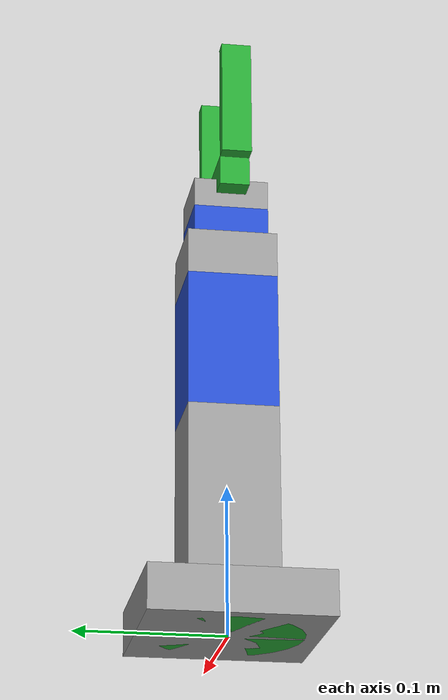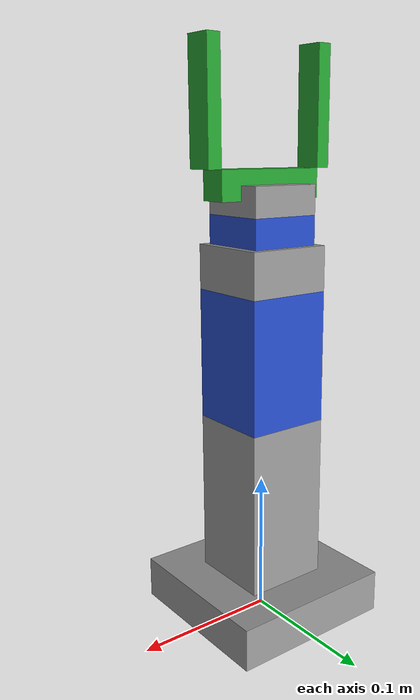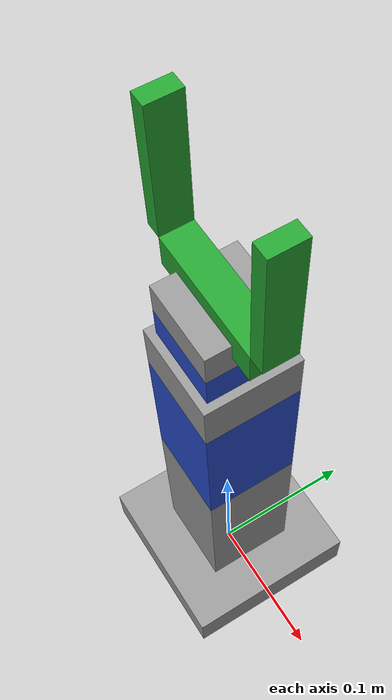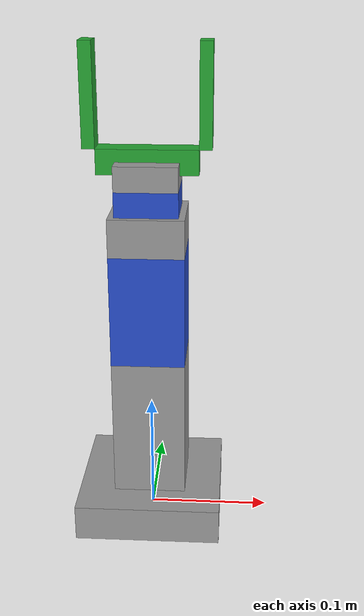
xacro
<?xml version="1.0"?>
<robot name="my_robot" xmlns:xacro="http://www.ros.org/wiki/xacro">

    <xacro:include filename="common_properties.xacro" />
    <xacro:include filename="arm.xacro" />
    <xacro:include filename="gripper.xacro" />
    <xacro:include filename="my_robot.ros2_control.real.xacro" />

    <joint name="gripper_base_joint" type="fixed">
        <parent link="tool_link" />
        <child link="gripper_base_link" />
        <origin xyz="0 0 0" rpy="0 0 0" />
    </joint>

</robot>

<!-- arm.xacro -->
<robot xmlns:xacro="http://www.ros.org/wiki/xacro">

    <!-- base_link - arm mount plate (centered on chassis) -->
    <link name="base_link">
        <visual>
            <geometry>
                <box size="0.12 0.12 0.03" />
            </geometry>
            <origin xyz="0 0 0.015" rpy="0 0 0" />
            <material name="grey" />
        </visual>
        <collision>
            <geometry>
                <box size="0.12 0.12 0.03" />
            </geometry>
            <origin xyz="0 0 0.015" rpy="0 0 0" />
        </collision>
    </link>

    <!-- shoulder_link - base rotation column (purple disc), extends 29.3mm up -->
    <link name="shoulder_link">
        <visual>
            <geometry>
                <cylinder radius="0.05" length="0.0293" />
            </geometry>
            <origin xyz="0 0 0.01465" rpy="0 0 0" />
            <material name="dark_green" />
        </visual>
        <collision>
            <geometry>
                <cylinder radius="0.05" length="0.0293" />
            </geometry>
            <origin xyz="0 0 0.01465" rpy="0 0 0" />
        </collision>
    </link>

    <!-- arm_link - upper arm, 118mm long (joint2 -> joint3) -->
    <link name="arm_link">
        <visual>
            <geometry>
                <box size="0.06 0.06 0.118" />
            </geometry>
            <origin xyz="0 0 0.059" rpy="0 0 0" />
            <material name="grey" />
        </visual>
        <collision>
            <geometry>
                <box size="0.06 0.06 0.118" />
            </geometry>
            <origin xyz="0 0 0.059" rpy="0 0 0" />
        </collision>
    </link>

    <!-- elbow_link - forearm link, 92mm long (joint3 -> joint4) -->
    <link name="elbow_link">
        <visual>
            <geometry>
                <box size="0.06 0.06 0.092" />
            </geometry>
            <origin xyz="0 0 0.046" rpy="0 0 0" />
            <material name="blue" />
        </visual>
        <collision>
            <geometry>
                <box size="0.06 0.06 0.092" />
            </geometry>
            <origin xyz="0 0 0.046" rpy="0 0 0" />
        </collision>
    </link>

    <!-- forearm_link - wrist segment, 31mm long (joint4 -> joint5) -->
    <link name="forearm_link">
        <visual>
            <geometry>
                <box size="0.06 0.06 0.031" />
            </geometry>
            <origin xyz="0 0 0.0155" rpy="0 0 0" />
            <material name="grey" />
        </visual>
        <collision>
            <geometry>
                <box size="0.06 0.06 0.031" />
            </geometry>
            <origin xyz="0 0 0.0155" rpy="0 0 0" />
        </collision>
    </link>

    <!-- wrist_link - small wrist/hand carrier after the roll joint -->
    <link name="wrist_link">
        <visual>
            <geometry>
                <box size="0.05 0.05 0.02" />
            </geometry>
            <origin xyz="0 0 0.01" rpy="0 0 0" />
            <material name="blue" />
        </visual>
        <collision>
            <geometry>
                <box size="0.05 0.05 0.02" />
            </geometry>
            <origin xyz="0 0 0.01" rpy="0 0 0" />
        </collision>
    </link>

    <!-- hand_link - short fixed mount where the gripper attaches.
         joint5 -> tool_link total = 0.02 + 0.01 = 0.03 (30mm measured from
         the servo output shaft face to the gripper base plate) -->
    <link name="hand_link">
        <visual>
            <geometry>
                <box size="0.05 0.05 0.02" />
            </geometry>
            <origin xyz="0 0 0.01" rpy="0 0 0" />
            <material name="grey" />
        </visual>
        <collision>
            <geometry>
                <box size="0.05 0.05 0.02" />
            </geometry>
            <origin xyz="0 0 0.01" rpy="0 0 0" />
        </collision>
    </link>

    <!-- tool_link - gripper mounting frame (gripper attaches here) -->
    <link name="tool_link" />

    <!-- joint1 - base yaw, about vertical Z.
         Revolute (not continuous) so MoveIt/RViz exposes a joint slider.
         Range +-135deg matches the ZP25S 270deg travel. -->
    <joint name="joint1" type="revolute">
        <parent link="base_link" />
        <child link="shoulder_link" />
        <origin xyz="0 0 0" rpy="0 0 0" />
        <axis xyz="0 0 1" />
        <limit effort="2.45" velocity="1.0" lower="-2.35619" upper="2.35619" />
    </joint>

    <!-- joint2 - shoulder pitch, about Y.
         Initial (servo zero) at -45deg. Range from -45deg to +90deg;
         cannot go further negative than -45deg (mount/servo stalls). -->
    <joint name="joint2" type="revolute">
        <parent link="shoulder_link" />
        <child link="arm_link" />
        <origin xyz="0 0 0.0293" rpy="0 0 0" />
        <axis xyz="0 1 0" />
        <limit effort="2.45" velocity="1.0" lower="-0.785398" upper="1.5708" />
    </joint>

    <!-- joint3 - elbow pitch, about Y. Initial at 0deg (vertical), range +-90deg -->
    <joint name="joint3" type="revolute">
        <parent link="arm_link" />
        <child link="elbow_link" />
        <origin xyz="0 0 0.118" rpy="0 0 0" />
        <axis xyz="0 1 0" />
        <limit effort="2.45" velocity="1.0" lower="-1.5708" upper="1.5708" />
    </joint>

    <!-- joint4 - wrist pitch, about Y.
         Initial (servo zero) at +90deg; cannot go further positive,
         negative travel down to -90deg -->
    <joint name="joint4" type="revolute">
        <parent link="elbow_link" />
        <child link="forearm_link" />
        <origin xyz="0 0 0.092" rpy="0 0 0" />
        <axis xyz="0 1 0" />
        <limit effort="2.45" velocity="1.0" lower="-1.5708" upper="1.5708" />
    </joint>

    <!-- joint5 - wrist roll, about the arm axis Z.
         Revolute (not continuous) so MoveIt/RViz exposes a joint slider.
         Range +-135deg matches the ZP25S 270deg travel. -->
    <joint name="joint5" type="revolute">
        <parent link="forearm_link" />
        <child link="wrist_link" />
        <origin xyz="0 0 0.031" rpy="0 0 0" />
        <axis xyz="0 0 1" />
        <limit effort="2.45" velocity="1.0" lower="-2.35619" upper="2.35619" />
    </joint>

    <!-- wrist_hand_joint - fixed, wrist -> hand, 20mm of the 30mm gap -->
    <joint name="wrist_hand_joint" type="fixed">
        <parent link="wrist_link" />
        <child link="hand_link" />
        <origin xyz="0 0 0.02" rpy="0 0 0" />
    </joint>

    <!-- hand_tool_joint - fixed, hand -> tool (gripper mounting face), 10mm.
         joint5 -> tool_link = 0.02 + 0.01 = 0.03 (30mm, servo shaft to
         gripper base plate) -->
    <joint name="hand_tool_joint" type="fixed">
        <parent link="hand_link" />
        <child link="tool_link" />
        <origin xyz="0 0 0.01" rpy="0 0 0" />
    </joint>

</robot>

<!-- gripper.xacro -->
<robot xmlns:xacro="http://www.ros.org/wiki/xacro">

    <!-- gripper_base_link - palm / base plate.
         Origin sits on the mounting face at tool_link; the plate extends
         +Z (away from the arm) by 20mm -->
    <link name="gripper_base_link">
        <visual>
            <geometry>
                <box size="0.08 0.02 0.02" />
            </geometry>
            <origin xyz="0 0 0.01" rpy="0 0 0" />
            <material name="dark_green" />
        </visual>
        <collision>
            <geometry>
                <box size="0.08 0.02 0.02" />
            </geometry>
            <origin xyz="0 0 0.01" rpy="0 0 0" />
        </collision>
    </link>

    <!-- gripper_left_finger_link - finger plate, 80mm long along +Z -->
    <link name="gripper_left_finger_link">
        <visual>
            <geometry>
                <box size="0.01 0.02 0.08" />
            </geometry>
            <origin xyz="0 0 0.04" rpy="0 0 0" />
            <material name="light_green" />
        </visual>
        <collision>
            <geometry>
                <box size="0.01 0.02 0.08" />
            </geometry>
            <origin xyz="0 0 0.04" rpy="0 0 0" />
        </collision>
    </link>

    <!-- gripper_right_finger_link - mirror of the left finger -->
    <link name="gripper_right_finger_link">
        <visual>
            <geometry>
                <box size="0.01 0.02 0.08" />
            </geometry>
            <origin xyz="0 0 0.04" rpy="0 0 0" />
            <material name="light_green" />
        </visual>
        <collision>
            <geometry>
                <box size="0.01 0.02 0.08" />
            </geometry>
            <origin xyz="0 0 0.04" rpy="0 0 0" />
        </collision>
    </link>

    <!-- left finger joint - starts at the OPEN position (centre -45mm, inner
         face -40mm) and travels +40mm in X to close -->
    <joint name="gripper_left_finger_joint" type="prismatic">
        <parent link="gripper_base_link" />
        <child link="gripper_left_finger_link" />
        <origin xyz="-0.045 0 0.02" rpy="0 0 0" />
        <axis xyz="1 0 0" />
        <limit effort="100.0" velocity="0.5" lower="0.0" upper="0.04" />
    </joint>

    <!-- right finger joint - mimic of the left one with multiplier -1, so it
         moves the opposite way and keeps the gripper symmetric -->
    <joint name="gripper_right_finger_joint" type="prismatic">
        <parent link="gripper_base_link" />
        <child link="gripper_right_finger_link" />
        <origin xyz="0.045 0 0.02" rpy="0 0 0" />
        <axis xyz="1 0 0" />
        <mimic joint="gripper_left_finger_joint" multiplier="-1.0" />
        <limit effort="100.0" velocity="0.5" lower="-0.04" upper="0.0" />
    </joint>

</robot>
